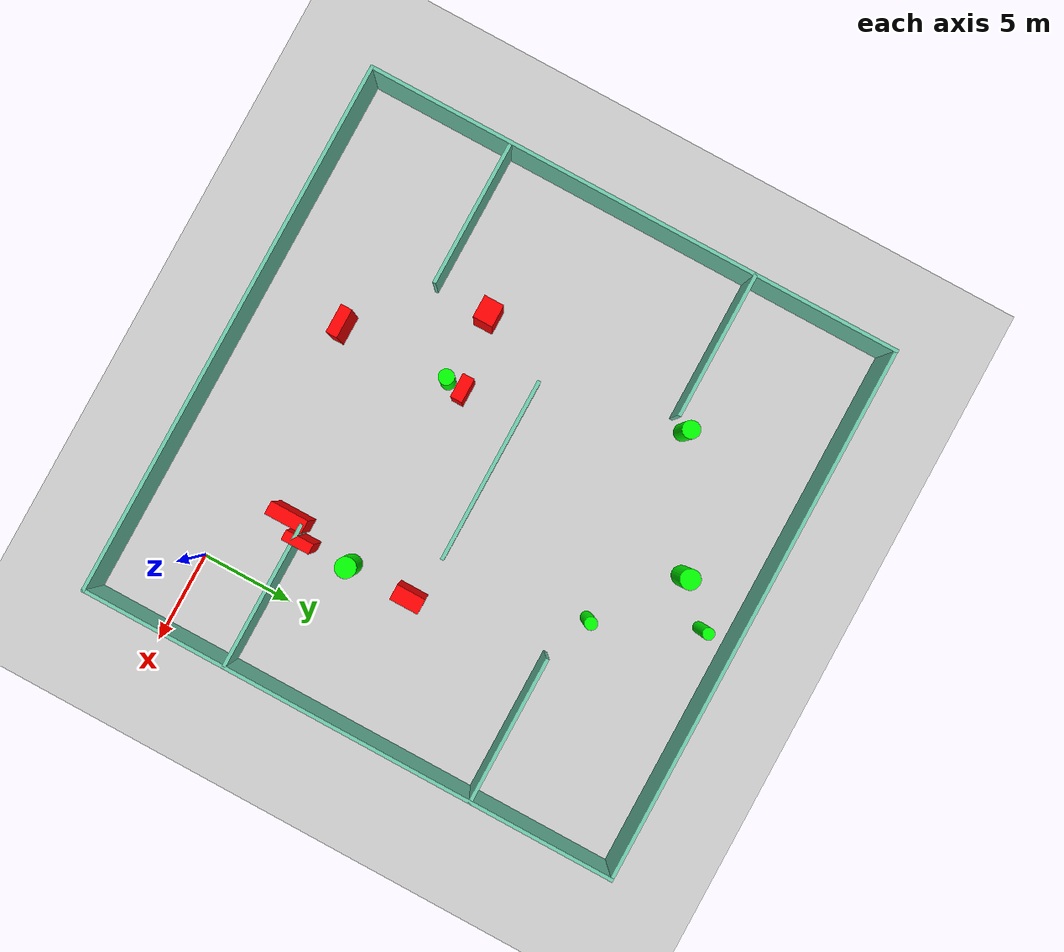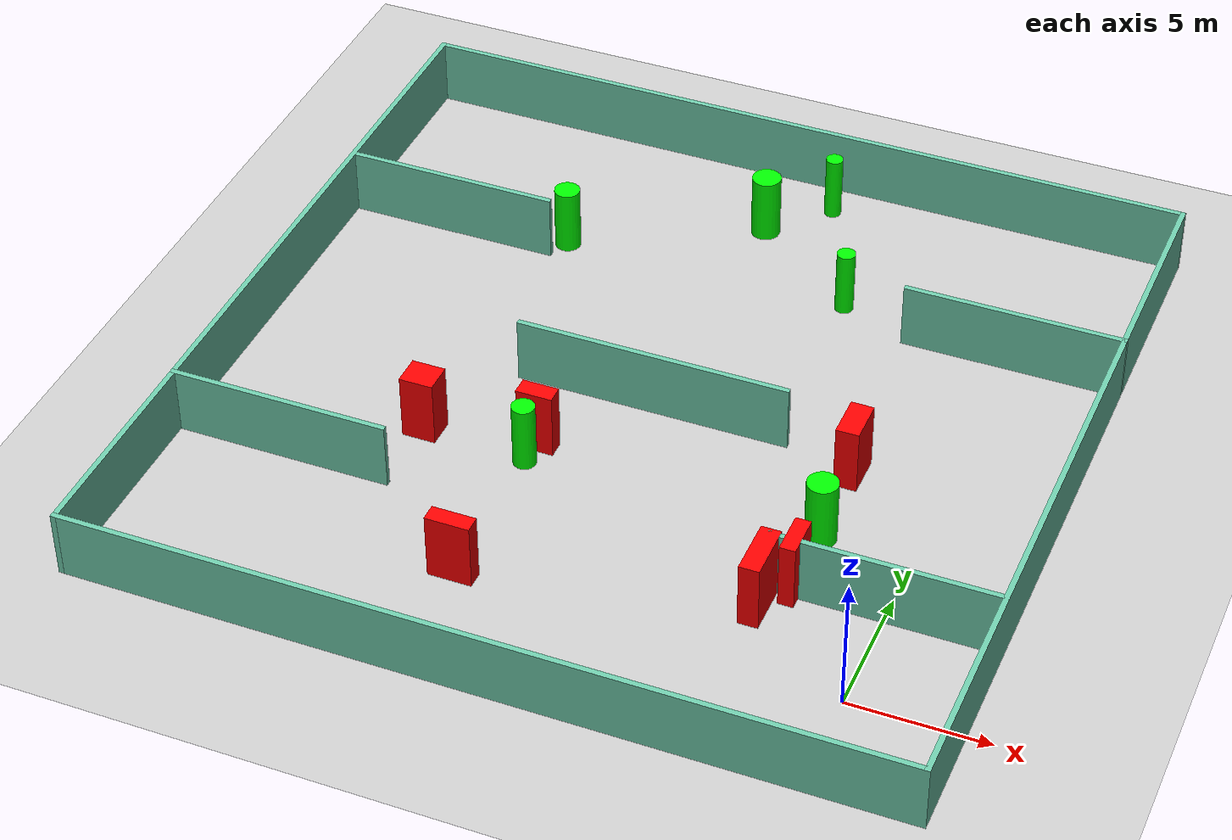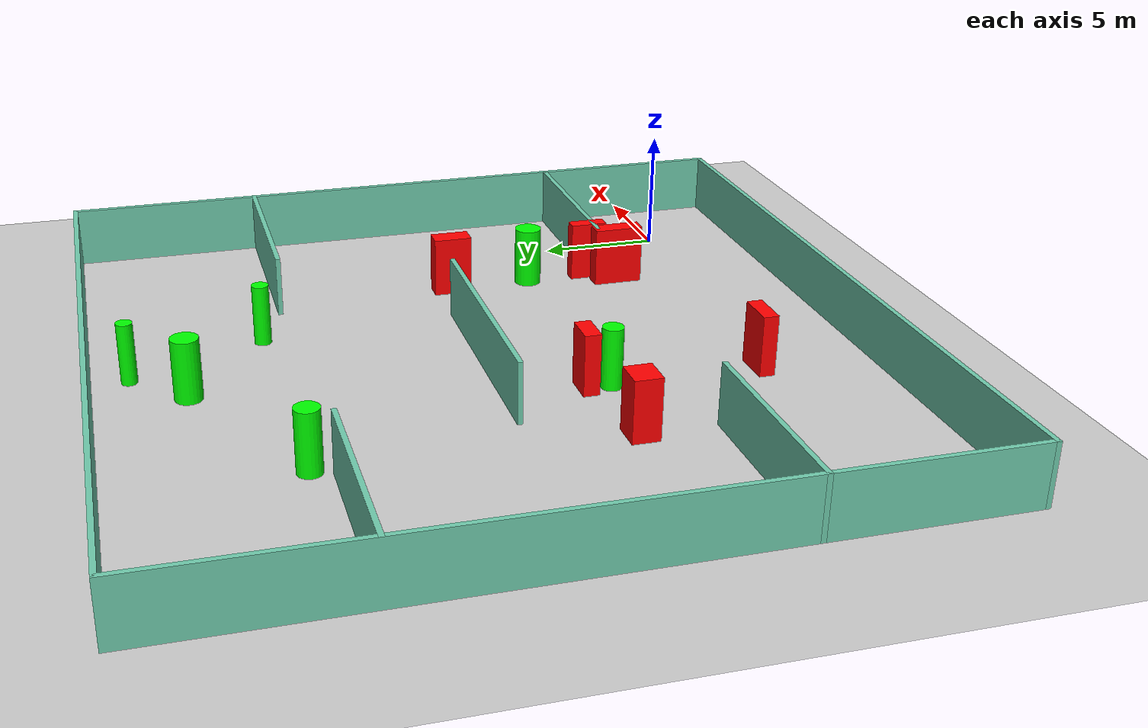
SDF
<sdf version="1.7">
 <world name="default">
  <light name="sun" type="directional">
   <pose>0 0 10 0 -0 0</pose>
   <diffuse>0.8 0.8 0.8 1</diffuse>
   <specular>0.2 0.2 0.2 1</specular>
   <attenuation>
    <range>1000</range>
    <constant>0.9</constant>
    <linear>0.01</linear>
    <quadratic>0.001</quadratic>
   </attenuation>
   <direction>-0.5 0.1 -0.9</direction>
   <spot><inner_angle>0</inner_angle><outer_angle>0</outer_angle><falloff>0</falloff></spot>
  </light>
  <model name="ground_plane">
   <static>1</static>
   <link name="link">
    <collision name="collision">
     <geometry><plane><normal>0 0 1</normal><size>100 100</size></plane></geometry>
     <surface>
      <contact><collide_bitmask>65535</collide_bitmask></contact>
      <friction><ode><mu>100</mu><mu2>50</mu2></ode></friction>
     </surface>
    </collision>
    <visual name="visual">
     <cast_shadows>0</cast_shadows>
     <geometry><plane><normal>0 0 1</normal><size>100 100</size></plane></geometry>
     <material>
      <script><uri>file://media/materials/scripts/gazebo.material</uri><name>Gazebo/Grey</name></script>
     </material>
    </visual>
   </link>
  </model>
  <gravity>0 0 -9.8</gravity>
  <magnetic_field>6e-06 2.3e-05 -4.2e-05</magnetic_field>
  <atmosphere type="adiabatic"/>
  <physics type="ode">
   <max_step_size>0.001</max_step_size>
   <real_time_factor>1</real_time_factor>
   <real_time_update_rate>1000</real_time_update_rate>
  </physics>
  <scene><ambient>0.4 0.4 0.4 1</ambient><background>0.7 0.7 0.7 1</background><shadows>1</shadows></scene>
  <spherical_coordinates>
   <surface_model>EARTH_WGS84</surface_model>
   <latitude_deg>0</latitude_deg>
   <longitude_deg>0</longitude_deg>
   <elevation>0</elevation>
   <heading_deg>0</heading_deg>
  </spherical_coordinates>
  <model name="my_base_walls">
   <link name="Wall_10">
    <collision name="Wall_10_Collision">
     <geometry><box><size>8.2 0.2 2.5</size></box></geometry>
     <pose>0 0 1.25 0 -0 0</pose>
    </collision>
    <visual name="Wall_10_Visual">
     <pose>0 0 1.25 0 -0 0</pose>
     <geometry><box><size>8.2 0.2 2.5</size></box></geometry>
     <material>
      <script><uri>file://media/materials/scripts/gazebo.material</uri><name>Gazebo/Grey</name></script>
      <ambient>0.435294 0.796078 0.67451 1</ambient>
     </material>
     <meta><layer>0</layer></meta>
    </visual>
    <pose>-11 -7 0 0 -0 0</pose>
   </link>
   <link name="Wall_12">
    <collision name="Wall_12_Collision">
     <geometry><box><size>8.2 0.2 2.5</size></box></geometry>
     <pose>0 0 1.25 0 -0 0</pose>
    </collision>
    <visual name="Wall_12_Visual">
     <pose>0 0 1.25 0 -0 0</pose>
     <geometry><box><size>8.2 0.2 2.5</size></box></geometry>
     <material>
      <script><uri>file://media/materials/scripts/gazebo.material</uri><name>Gazebo/Grey</name></script>
      <ambient>0.435294 0.796078 0.67451 1</ambient>
     </material>
     <meta><layer>0</layer></meta>
    </visual>
    <pose>-11 7 0 0 -0 0</pose>
   </link>
   <link name="Wall_14">
    <collision name="Wall_14_Collision">
     <geometry><box><size>8.2 0.2 2.5</size></box></geometry>
     <pose>0 0 1.25 0 -0 0</pose>
    </collision>
    <visual name="Wall_14_Visual">
     <pose>0 0 1.25 0 -0 0</pose>
     <geometry><box><size>8.2 0.2 2.5</size></box></geometry>
     <material>
      <script><uri>file://media/materials/scripts/gazebo.material</uri><name>Gazebo/Grey</name></script>
      <ambient>0.435294 0.796078 0.67451 1</ambient>
     </material>
     <meta><layer>0</layer></meta>
    </visual>
    <pose>11 7 0 0 -0 3.14159</pose>
   </link>
   <link name="Wall_16">
    <collision name="Wall_16_Collision">
     <geometry><box><size>10.2 0.2 2.5</size></box></geometry>
     <pose>0 0 1.25 0 -0 0</pose>
    </collision>
    <visual name="Wall_16_Visual">
     <pose>0 0 1.25 0 -0 0</pose>
     <geometry><box><size>10.2 0.2 2.5</size></box></geometry>
     <material>
      <script><uri>file://media/materials/scripts/gazebo.material</uri><name>Gazebo/Grey</name></script>
      <ambient>0.435294 0.796078 0.67451 1</ambient>
     </material>
     <meta><layer>0</layer></meta>
    </visual>
    <pose>0 0 0 0 -0 3.14159</pose>
   </link>
   <link name="Wall_2">
    <collision name="Wall_2_Collision">
     <geometry><box><size>30.2 0.2 2.5</size></box></geometry>
     <pose>0 0 1.25 0 -0 0</pose>
    </collision>
    <visual name="Wall_2_Visual">
     <pose>0 0 1.25 0 -0 0</pose>
     <geometry><box><size>30.2 0.2 2.5</size></box></geometry>
     <material>
      <script><uri>file://media/materials/scripts/gazebo.material</uri><name>Gazebo/Grey</name></script>
      <ambient>0.435294 0.796078 0.67451 1</ambient>
     </material>
     <meta><layer>0</layer></meta>
    </visual>
    <pose>0 -15 0 0 -0 3.14159</pose>
   </link>
   <link name="Wall_3">
    <collision name="Wall_3_Collision">
     <geometry><box><size>30.2 0.2 2.5</size></box></geometry>
     <pose>0 0 1.25 0 -0 0</pose>
    </collision>
    <visual name="Wall_3_Visual">
     <pose>0 0 1.25 0 -0 0</pose>
     <geometry><box><size>30.2 0.2 2.5</size></box></geometry>
     <material>
      <script><uri>file://media/materials/scripts/gazebo.material</uri><name>Gazebo/Grey</name></script>
      <ambient>0.435294 0.796078 0.67451 1</ambient>
     </material>
     <meta><layer>0</layer></meta>
    </visual>
    <pose>-15 0 0 0 -0 1.5708</pose>
   </link>
   <link name="Wall_4">
    <collision name="Wall_4_Collision">
     <geometry><box><size>30.2 0.2 2.5</size></box></geometry>
     <pose>0 0 1.25 0 -0 0</pose>
    </collision>
    <visual name="Wall_4_Visual">
     <pose>0 0 1.25 0 -0 0</pose>
     <geometry><box><size>30.2 0.2 2.5</size></box></geometry>
     <material>
      <script><uri>file://media/materials/scripts/gazebo.material</uri><name>Gazebo/Grey</name></script>
      <ambient>0.435294 0.796078 0.67451 1</ambient>
     </material>
     <meta><layer>0</layer></meta>
    </visual>
    <pose>0 15 0 0 -0 0</pose>
   </link>
   <link name="Wall_6">
    <collision name="Wall_6_Collision">
     <geometry><box><size>30.2 0.2 2.5</size></box></geometry>
     <pose>0 0 1.25 0 -0 0</pose>
    </collision>
    <visual name="Wall_6_Visual">
     <pose>0 0 1.25 0 -0 0</pose>
     <geometry><box><size>30.2 0.2 2.5</size></box></geometry>
     <material>
      <script><uri>file://media/materials/scripts/gazebo.material</uri><name>Gazebo/Grey</name></script>
      <ambient>0.435294 0.796078 0.67451 1</ambient>
     </material>
     <meta><layer>0</layer></meta>
    </visual>
    <pose>15 0 0 0 -0 1.5708</pose>
   </link>
   <link name="Wall_8">
    <collision name="Wall_8_Collision">
     <geometry><box><size>8.2 0.2 2.5</size></box></geometry>
     <pose>0 0 1.25 0 -0 0</pose>
    </collision>
    <visual name="Wall_8_Visual">
     <pose>0 0 1.25 0 -0 0</pose>
     <geometry><box><size>8.2 0.2 2.5</size></box></geometry>
     <material>
      <script><uri>file://media/materials/scripts/gazebo.material</uri><name>Gazebo/Grey</name></script>
      <ambient>0.435294 0.796078 0.67451 1</ambient>
     </material>
     <meta><layer>0</layer></meta>
    </visual>
    <pose>11 -7 0 0 -0 3.14159</pose>
   </link>
   <static>1</static>
   <pose>-11 11 0 0 -0 0</pose>
  </model>
  <model name="cylinder1">
   <static>1</static>
   <link name="link">
    <inertial>
     <mass>1</mass>
     <inertia><ixx>0.5</ixx><ixy>0</ixy><ixz>0</ixz><iyy>0.5</iyy><iyz>0</iyz><izz>1</izz></inertia>
    </inertial>
    <collision name="collision">
     <geometry><cylinder><radius>0.48270466923929095</radius><length>2.5</length></cylinder></geometry>
    </collision>
    <visual name="visual">
     <geometry><cylinder><radius>0.48270466923929095</radius><length>2.5</length></cylinder></geometry>
     <material>
      <ambient>0 1 0 1</ambient>
      <diffuse>0 1 0 1</diffuse>
      <specular>0.1 0.1 0.1 1</specular>
      <emissive>0 0 0 0</emissive>
     </material>
    </visual>
   </link>
   <pose>-17.594191496605955 18.85618097486401 1.25 0 0 0</pose>
  </model>
  <model name="cylinder2">
   <static>1</static>
   <link name="link">
    <inertial>
     <mass>1</mass>
     <inertia><ixx>0.5</ixx><ixy>0</ixy><ixz>0</ixz><iyy>0.5</iyy><iyz>0</iyz><izz>1</izz></inertia>
    </inertial>
    <collision name="collision">
     <geometry><cylinder><radius>0.32108694481129574</radius><length>2.5</length></cylinder></geometry>
    </collision>
    <visual name="visual">
     <geometry><cylinder><radius>0.32108694481129574</radius><length>2.5</length></cylinder></geometry>
     <material>
      <ambient>0 1 0 1</ambient>
      <diffuse>0 1 0 1</diffuse>
      <specular>0.1 0.1 0.1 1</specular>
      <emissive>0 0 0 0</emissive>
     </material>
    </visual>
   </link>
   <pose>-9.02420119635569 24.452496990742503 1.25 0 0 0</pose>
  </model>
  <model name="cylinder3">
   <static>1</static>
   <link name="link">
    <inertial>
     <mass>1</mass>
     <inertia><ixx>0.5</ixx><ixy>0</ixy><ixz>0</ixz><iyy>0.5</iyy><iyz>0</iyz><izz>1</izz></inertia>
    </inertial>
    <collision name="collision">
     <geometry><cylinder><radius>0.3458489148193331</radius><length>2.5</length></cylinder></geometry>
    </collision>
    <visual name="visual">
     <geometry><cylinder><radius>0.3458489148193331</radius><length>2.5</length></cylinder></geometry>
     <material>
      <ambient>0 1 0 1</ambient>
      <diffuse>0 1 0 1</diffuse>
      <specular>0.1 0.1 0.1 1</specular>
      <emissive>0 0 0 0</emissive>
     </material>
    </visual>
   </link>
   <pose>-6.671413407973889 19.062279768906087 1.25 0 0 0</pose>
  </model>
  <model name="cylinder4">
   <static>1</static>
   <link name="link">
    <inertial>
     <mass>1</mass>
     <inertia><ixx>0.5</ixx><ixy>0</ixy><ixz>0</ixz><iyy>0.5</iyy><iyz>0</iyz><izz>1</izz></inertia>
    </inertial>
    <collision name="collision">
     <geometry><cylinder><radius>0.561717949619436</radius><length>2.5</length></cylinder></geometry>
    </collision>
    <visual name="visual">
     <geometry><cylinder><radius>0.561717949619436</radius><length>2.5</length></cylinder></geometry>
     <material>
      <ambient>0 1 0 1</ambient>
      <diffuse>0 1 0 1</diffuse>
      <specular>0.1 0.1 0.1 1</specular>
      <emissive>0 0 0 0</emissive>
     </material>
    </visual>
   </link>
   <pose>-3.249168770729643 6.957933309983682 1.25 0 0 0</pose>
  </model>
  <model name="cylinder5">
   <static>1</static>
   <link name="link">
    <inertial>
     <mass>1</mass>
     <inertia><ixx>0.5</ixx><ixy>0</ixy><ixz>0</ixz><iyy>0.5</iyy><iyz>0</iyz><izz>1</izz></inertia>
    </inertial>
    <collision name="collision">
     <geometry><cylinder><radius>0.42370792035487626</radius><length>2.5</length></cylinder></geometry>
    </collision>
    <visual name="visual">
     <geometry><cylinder><radius>0.42370792035487626</radius><length>2.5</length></cylinder></geometry>
     <material>
      <ambient>0 1 0 1</ambient>
      <diffuse>0 1 0 1</diffuse>
      <specular>0.1 0.1 0.1 1</specular>
      <emissive>0 0 0 0</emissive>
     </material>
    </visual>
   </link>
   <pose>-14.039722575973087 6.812663814818533 1.25 0 0 0</pose>
  </model>
  <model name="cylinder6">
   <static>1</static>
   <link name="link">
    <inertial>
     <mass>1</mass>
     <inertia><ixx>0.5</ixx><ixy>0</ixy><ixz>0</ixz><iyy>0.5</iyy><iyz>0</iyz><izz>1</izz></inertia>
    </inertial>
    <collision name="collision">
     <geometry><cylinder><radius>0.5480212959447522</radius><length>2.5</length></cylinder></geometry>
    </collision>
    <visual name="visual">
     <geometry><cylinder><radius>0.5480212959447522</radius><length>2.5</length></cylinder></geometry>
     <material>
      <ambient>0 1 0 1</ambient>
      <diffuse>0 1 0 1</diffuse>
      <specular>0.1 0.1 0.1 1</specular>
      <emissive>0 0 0 0</emissive>
     </material>
    </visual>
   </link>
   <pose>-10.975709329381118 22.374666108934854 1.25 0 0 0</pose>
  </model>
  <model name="box1">
   <static>1</static>
   <link name="link">
    <inertial>
     <mass>1</mass>
     <inertia><ixx>0.083</ixx><ixy>0</ixy><ixz>0</ixz><iyy>0.083</iyy><iyz>0</iyz><izz>0.083</izz></inertia>
    </inertial>
    <collision name="collision">
     <geometry><box><size>0.5652779612423879 1.5573283813925252 2.5</size></box></geometry>
    </collision>
    <visual name="visual">
     <geometry><box><size>0.5652779612423879 1.5573283813925252 2.5</size></box></geometry>
     <material>
      <ambient>1 0 0 1</ambient>
      <diffuse>1 0 0 1</diffuse>
      <specular>0.1 0.1 0.1 1</specular>
      <emissive>0 0 0 0</emissive>
     </material>
    </visual>
    <sensor name="my_contact" type="contact">
     <contact><collision>box_collision</collision><topic>__default_topic__</topic></contact>
    </sensor>
   </link>
   <pose>-3.220565365158855 4.2320424653695365 1.25 0 0 0</pose>
  </model>
  <model name="box2">
   <static>1</static>
   <link name="link">
    <inertial>
     <mass>1</mass>
     <inertia><ixx>0.083</ixx><ixy>0</ixy><ixz>0</ixz><iyy>0.083</iyy><iyz>0</iyz><izz>0.083</izz></inertia>
    </inertial>
    <collision name="collision">
     <geometry><box><size>1.2430898620987318 1.1001387487941574 2.5</size></box></geometry>
    </collision>
    <visual name="visual">
     <geometry><box><size>1.2430898620987318 1.1001387487941574 2.5</size></box></geometry>
     <material>
      <ambient>1 0 0 1</ambient>
      <diffuse>1 0 0 1</diffuse>
      <specular>0.1 0.1 0.1 1</specular>
      <emissive>0 0 0 0</emissive>
     </material>
    </visual>
    <sensor name="my_contact" type="contact">
     <contact><collision>box_collision</collision><topic>__default_topic__</topic></contact>
    </sensor>
   </link>
   <pose>-17.962803052633873 7.075297992731521 1.25 0 0 0</pose>
  </model>
  <model name="box3">
   <static>1</static>
   <link name="link">
    <inertial>
     <mass>1</mass>
     <inertia><ixx>0.083</ixx><ixy>0</ixy><ixz>0</ixz><iyy>0.083</iyy><iyz>0</iyz><izz>0.083</izz></inertia>
    </inertial>
    <collision name="collision">
     <geometry><box><size>1.608887233663459 0.6262862492367953 2.5</size></box></geometry>
    </collision>
    <visual name="visual">
     <geometry><box><size>1.608887233663459 0.6262862492367953 2.5</size></box></geometry>
     <material>
      <ambient>1 0 0 1</ambient>
      <diffuse>1 0 0 1</diffuse>
      <specular>0.1 0.1 0.1 1</specular>
      <emissive>0 0 0 0</emissive>
     </material>
    </visual>
    <sensor name="my_contact" type="contact">
     <contact><collision>box_collision</collision><topic>__default_topic__</topic></contact>
    </sensor>
   </link>
   <pose>-13.93521851484442 0.7234275420690981 1.25 0 0 0</pose>
  </model>
  <model name="box4">
   <static>1</static>
   <link name="link">
    <inertial>
     <mass>1</mass>
     <inertia><ixx>0.083</ixx><ixy>0</ixy><ixz>0</ixz><iyy>0.083</iyy><iyz>0</iyz><izz>0.083</izz></inertia>
    </inertial>
    <collision name="collision">
     <geometry><box><size>0.8412224609492165 1.5984520684082761 2.5</size></box></geometry>
    </collision>
    <visual name="visual">
     <geometry><box><size>0.8412224609492165 1.5984520684082761 2.5</size></box></geometry>
     <material>
      <ambient>1 0 0 1</ambient>
      <diffuse>1 0 0 1</diffuse>
      <specular>0.1 0.1 0.1 1</specular>
      <emissive>0 0 0 0</emissive>
     </material>
    </visual>
    <sensor name="my_contact" type="contact">
     <contact><collision>box_collision</collision><topic>__default_topic__</topic></contact>
    </sensor>
   </link>
   <pose>-3.3388552794983184 10.443267833685102 1.25 0 0 0</pose>
  </model>
  <model name="box5">
   <static>1</static>
   <link name="link">
    <inertial>
     <mass>1</mass>
     <inertia><ixx>0.083</ixx><ixy>0</ixy><ixz>0</ixz><iyy>0.083</iyy><iyz>0</iyz><izz>0.083</izz></inertia>
    </inertial>
    <collision name="collision">
     <geometry><box><size>0.729682995918332 2.093546246314763 2.5</size></box></geometry>
    </collision>
    <visual name="visual">
     <geometry><box><size>0.729682995918332 2.093546246314763 2.5</size></box></geometry>
     <material>
      <ambient>1 0 0 1</ambient>
      <diffuse>1 0 0 1</diffuse>
      <specular>0.1 0.1 0.1 1</specular>
      <emissive>0 0 0 0</emissive>
     </material>
    </visual>
    <sensor name="my_contact" type="contact">
     <contact><collision>box_collision</collision><topic>__default_topic__</topic></contact>
    </sensor>
   </link>
   <pose>-4.038324949182446 3.152418689912974 1.25 0 0 0</pose>
  </model>
  <model name="box6">
   <static>1</static>
   <link name="link">
    <inertial>
     <mass>1</mass>
     <inertia><ixx>0.083</ixx><ixy>0</ixy><ixz>0</ixz><iyy>0.083</iyy><iyz>0</iyz><izz>0.083</izz></inertia>
    </inertial>
    <collision name="collision">
     <geometry><box><size>1.3437437187849866 0.6559000227719181 2.5</size></box></geometry>
    </collision>
    <visual name="visual">
     <geometry><box><size>1.3437437187849866 0.6559000227719181 2.5</size></box></geometry>
     <material>
      <ambient>1 0 0 1</ambient>
      <diffuse>1 0 0 1</diffuse>
      <specular>0.1 0.1 0.1 1</specular>
      <emissive>0 0 0 0</emissive>
     </material>
    </visual>
    <sensor name="my_contact" type="contact">
     <contact><collision>box_collision</collision><topic>__default_topic__</topic></contact>
    </sensor>
   </link>
   <pose>-13.94297727742135 7.779289638555095 1.25 0 0 0</pose>
  </model>
 </world>
</sdf>
